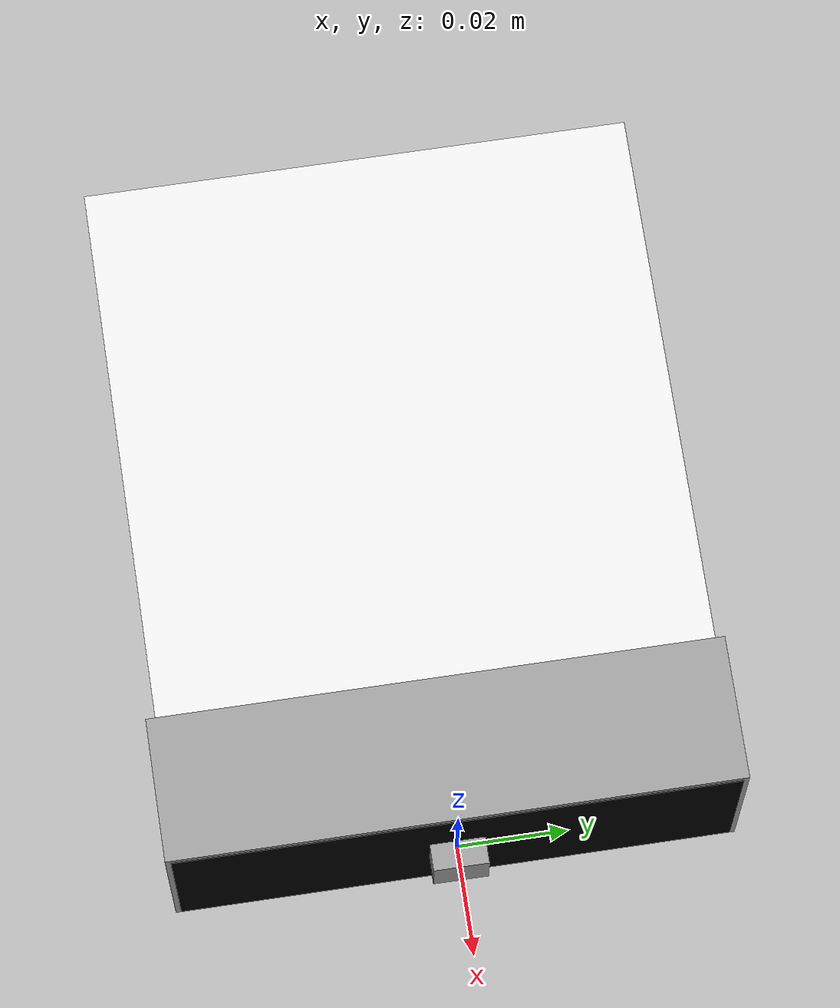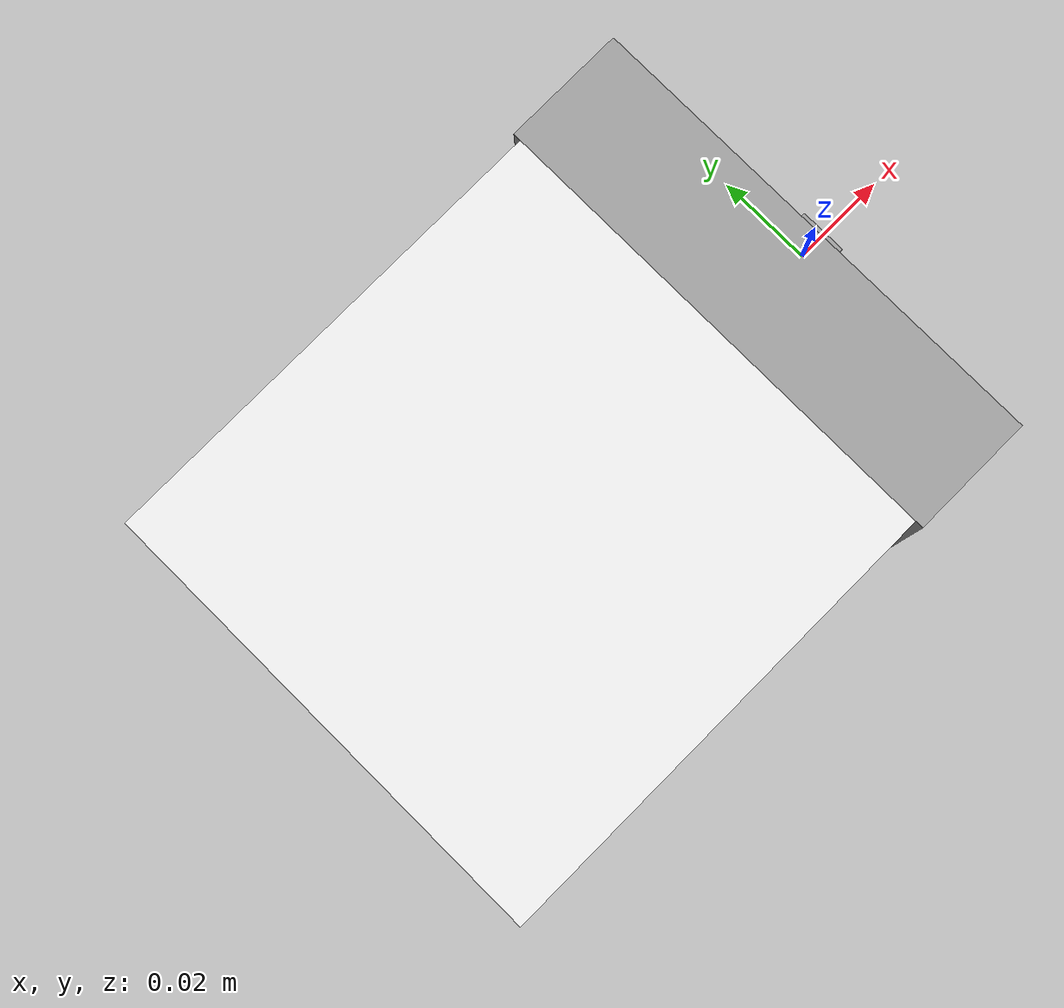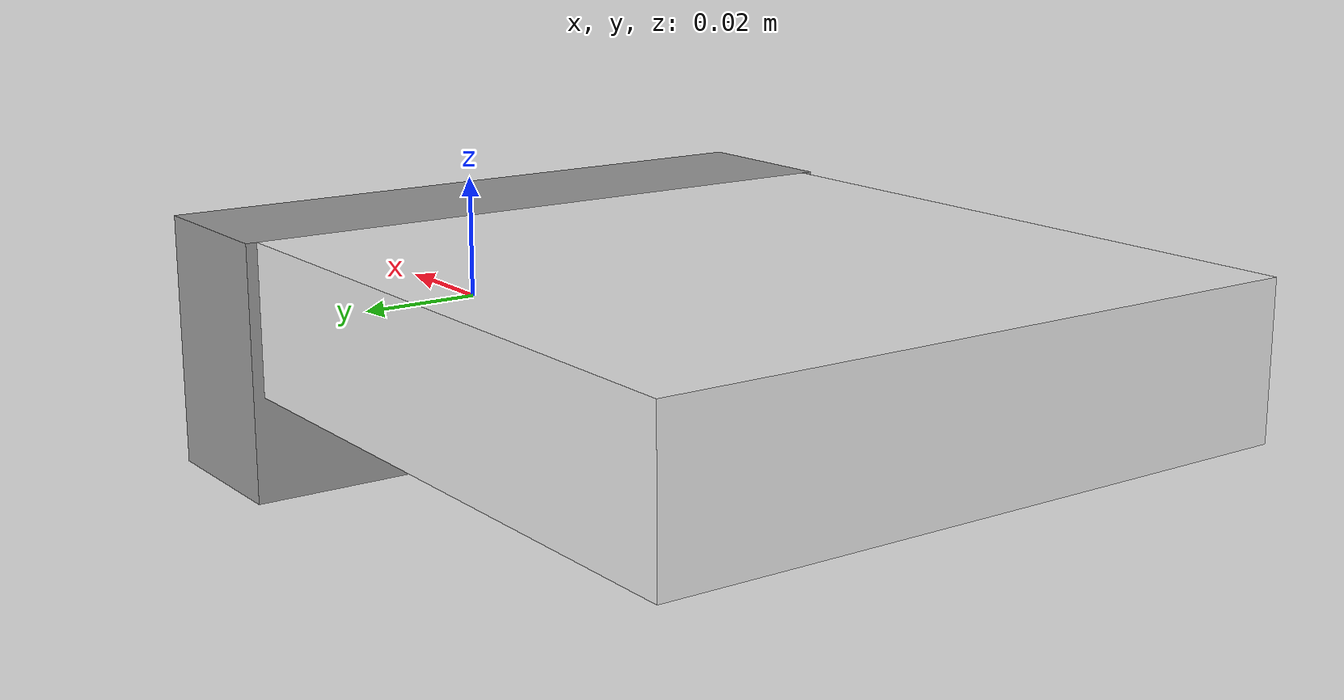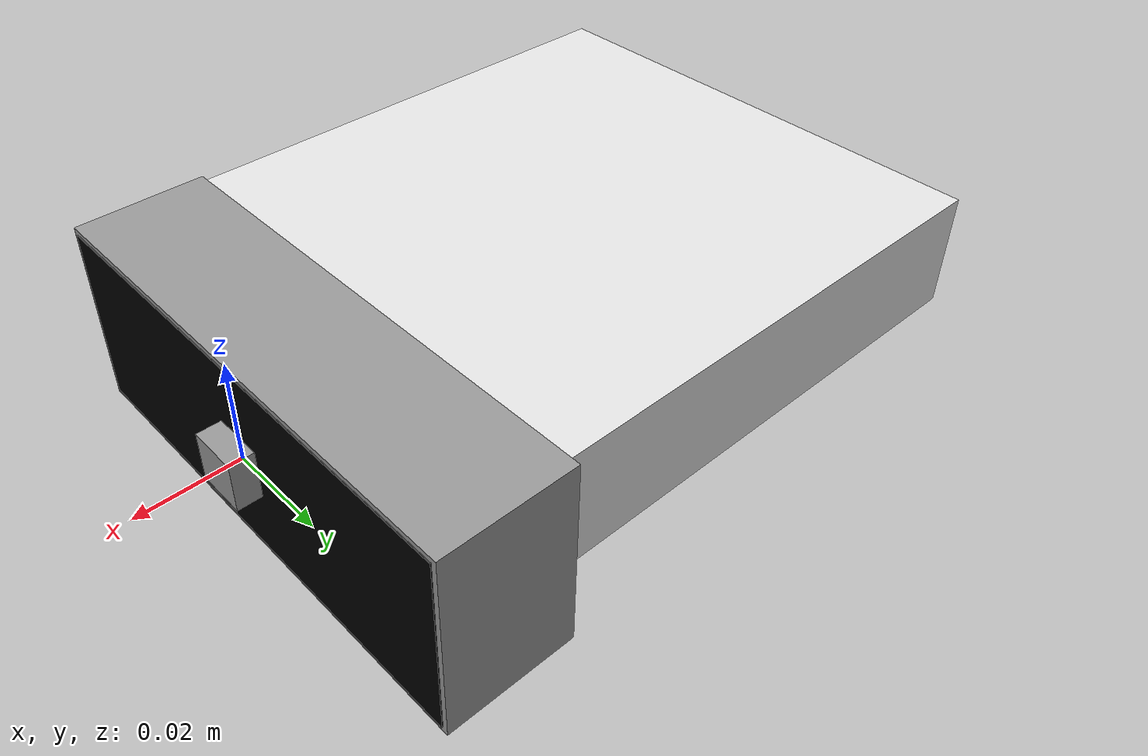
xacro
<?xml version="1.0"?>
<!--
 Copyright (c) Microsoft Corporation. All rights reserved.
 Licensed under the MIT License.
-->

<robot name="azure-kinect" xmlns:xacro="http://www.ros.org/wiki/xacro">
  <xacro:arg name="tf_prefix" default=""/>
  <material name="black">
    <color rgba="0. 0. 0. 1" />
  </material>
  <material name="dark_grey">
    <color rgba="0.1 0.1 0.1 1" />
  </material>
  <material name="grey">
    <color rgba="0.6 0.6 0.6 1" />
  </material>
  <material name="white">
    <color rgba="0.9 0.9 0.9 1" />
  </material>

  <!-- Main camera links -->
  <link name="$(arg tf_prefix)camera_body">
    <visual>
      <origin xyz="0. 0. 0." />
      <geometry>
        <box size="0.0994 0.0996 0.023" />
      </geometry>
      <material name="white" />
    </visual>
  </link>

  <link name="$(arg tf_prefix)camera_base">
    <visual>
      <origin xyz="-0.013 0. 0." />
      <geometry>
        <box size="0.026 0.103 0.039" />
      </geometry>
      <material name="grey" />
    </visual>
  </link>

  <link name="$(arg tf_prefix)camera_visor">
    <visual>
      <origin xyz="-0.0128 0. 0." />
      <geometry>
        <box size="0.026 0.101 0.037" />
      </geometry>
      <material name="black" />
    </visual>
  </link>

  <!-- Added missing links -->
  <link name="$(arg tf_prefix)camera_link">
    <visual>
      <origin xyz="0. 0. 0." />
      <geometry>
        <box size="0.01 0.01 0.01" />
      </geometry>
      <material name="grey" />
    </visual>
  </link>

  <link name="$(arg tf_prefix)rgb_camera_link">
    <visual>
      <origin xyz="0. 0. 0." />
      <geometry>
        <box size="0.01 0.01 0.01" />
      </geometry>
      <material name="dark_grey" />
    </visual>
  </link>

  <!-- Joint definitions -->
  <joint name="$(arg tf_prefix)camera_base_to_body" type="fixed">
    <parent link="$(arg tf_prefix)camera_base" />
    <child link="$(arg tf_prefix)camera_body" />
    <origin xyz="-0.0757 0. 0.008" rpy="0. 0. 0." />
  </joint>

  <joint name="$(arg tf_prefix)camera_base_to_visor" type="fixed">
    <parent link="$(arg tf_prefix)camera_base" />
    <child link="$(arg tf_prefix)camera_visor" />
    <origin xyz="0. 0. 0." rpy="0. 0. 0." />
  </joint>

  <!-- Fixed camera_rgb_joint to use proper parent link -->
  <joint name="$(arg tf_prefix)camera_rgb_joint" type="fixed">
    <parent link="$(arg tf_prefix)camera_base" />
    <child link="$(arg tf_prefix)rgb_camera_link" />
    <origin xyz="0. 0. 0." rpy="0. 0. 0." />
  </joint>

  <!-- Optional: Add joint from camera_base to camera_link if needed -->
  <joint name="$(arg tf_prefix)camera_base_to_link" type="fixed">
    <parent link="$(arg tf_prefix)camera_base" />
    <child link="$(arg tf_prefix)camera_link" />
    <origin xyz="0. 0. 0." rpy="0. 0. 0." />
  </joint>
</robot>
